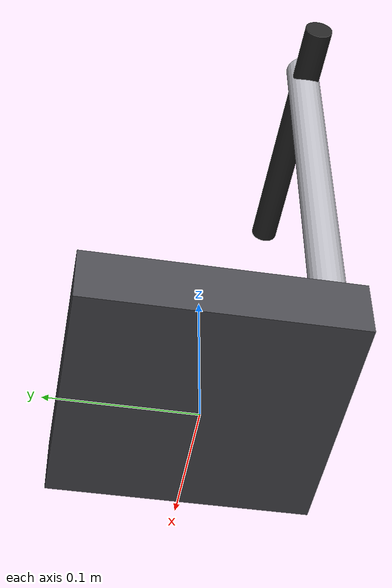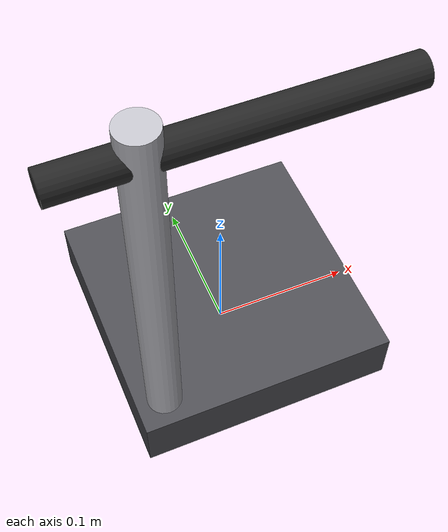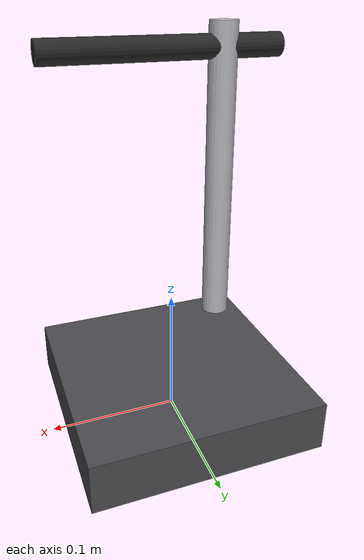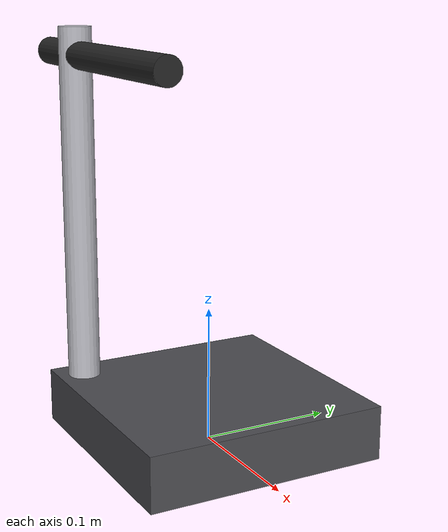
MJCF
<?xml version="1.0" encoding="utf-8"?>
<mujoco model="arc_welding_station">
  <compiler angle="radian" autolimits="true"/>
  <default>
    <default class="body"><geom contype="1" conaffinity="1"/></default>
  </default>
  <worldbody>
    <body name="base">
      <geom type="box" size="0.09 0.09 0.02" pos="0 0 0.02" rgba="0.3 0.3 0.32 1" class="body"/>
      <geom type="cylinder" size="0.012 0.14" pos="-0.07 -0.07 0.16" rgba="0.75 0.75 0.78 1" class="body"/>
      <body name="torch_arm" pos="-0.07 -0.07 0.28">
        <joint name="torch_arm_joint" type="hinge" axis="0 1 0" range="-0.7 0.3" damping="0.3" frictionloss="0.3"/>
  <geom type="cylinder" size="0.01 0.10" pos="0.05 0 0" rgba="0.15 0.15 0.15 1" class="body" quat="0.7071068 0 0.7071068 0"/>
      </body>
    </body>
  </worldbody>
</mujoco>
